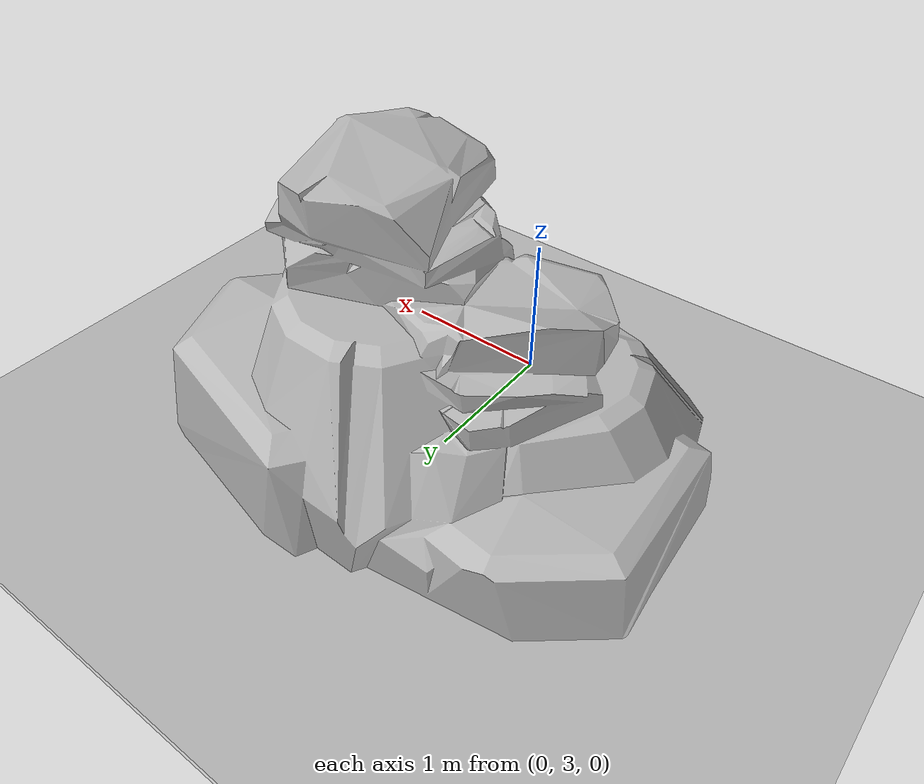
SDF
<?xml version="1.0" ?>

<sdf version="1.6">
  <world name="default">

     <scene>
      <ambient>0.8 0.8 0.8 1.0</ambient>
      <background>0 0 0</background>
      <grid>false</grid>
    </scene>

  <gui>
      <camera name="gui_camera">
        <pose>0.865529 0.125622 1.71795 0 0.364 2.518</pose>
      </camera>
    </gui>

    <include>
      <uri>model://sun</uri>
    </include>

    <include>
      <uri>model://ground_plane</uri>
    </include>

    <include>
      <uri>model://testing_plane_2</uri>
      <pose>0 0 0.05 0 0 0</pose>
    </include>

    <include>
      <uri>model://rock</uri>
      <pose>0 4.0 0 0 0 0</pose>
    </include>

    <light name='user_point_light_0' type='point'>
      <pose>1.05782 2.91259 1 0 -0 0</pose>
      <diffuse>0.5 0.5 0.5 1</diffuse>
      <specular>0.1 0.1 0.1 1</specular>
      <attenuation>
        <range>20</range>
        <constant>0.05</constant>
        <linear>0.02</linear>
        <quadratic>0.001</quadratic>
      </attenuation>
      <cast_shadows>0</cast_shadows>
      <direction>0 0 -1</direction>
    </light>

    <plugin name="gazebo_ros_state" filename="libgazebo_ros_state.so">
      <ros>
        <namespace>/gazebo</namespace>
      </ros>
      <update_rate>5.0</update_rate>
    </plugin>

  </world>
</sdf>

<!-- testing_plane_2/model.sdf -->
<sdf version='1.4'>
  <model name='testing_plane_2'>
    <static>1</static>
      <link name='link'>
        <collision name='collision'>
          <geometry>
            <plane>
              <normal>0 0 1</normal>
              <size>20 20</size>
            </plane>
          </geometry>
          <surface>
            <friction>
              <ode>
                <mu>100</mu>
                <mu2>50</mu2>
              </ode>
            </friction>
            <contact>
              <ode/>
            </contact>
            <bounce/>
          </surface>
          <max_contacts>10</max_contacts>
        </collision>

        <visual name='visual'>
          <cast_shadows>0</cast_shadows>
          <geometry>
            <mesh>
            <uri>model://testing_plane_2/meshes/testing_plane_2.dae</uri>
          </mesh>
          </geometry>
        </visual>
        <self_collide>0</self_collide>
        <kinematic>0</kinematic>
        <gravity>1</gravity>
      </link>
      <pose>0 0 0 0 -0 0</pose>
  </model>
</sdf>

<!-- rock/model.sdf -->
<sdf version='1.6'>
  <model name='rock'>
    <link name='link_1'>
         <visual name='visual'>
        <pose frame=''>0 0 0 0 -0 0</pose>
        <geometry>
          <mesh>
            <uri>model://rock/meshes/rock.dae</uri>
            <scale>0.2 0.2 0.2</scale>
          </mesh>
        </geometry>
        <cast_shadows>1</cast_shadows>
        <transparency>0</transparency>
      </visual>

      <collision name='collision'>
        <laser_retro>0</laser_retro>
        <max_contacts>10</max_contacts>
        <pose frame=''>0 0 0 0 -0 0</pose>
        <geometry>
          <mesh>
            <uri>model://rock/meshes/rock.dae</uri>
            <scale>0.2 0.2 0.2</scale>
          </mesh>
        </geometry>
     </collision>

    </link>

    <static>1</static>
    <allow_auto_disable>1</allow_auto_disable>
  </model>
</sdf>
